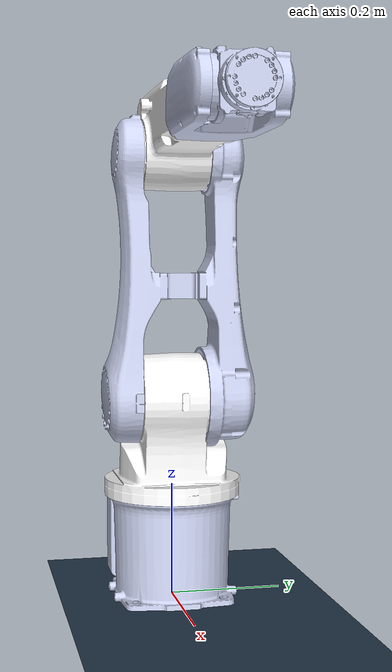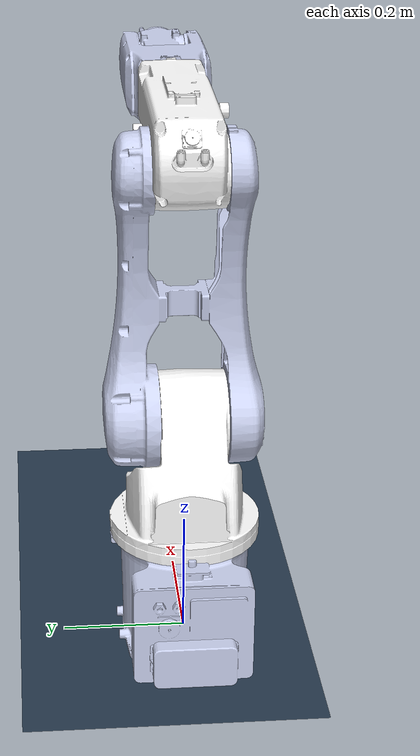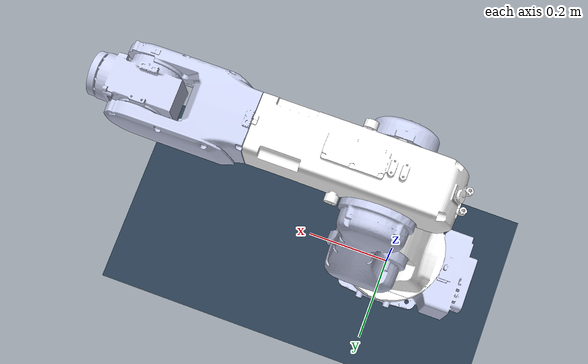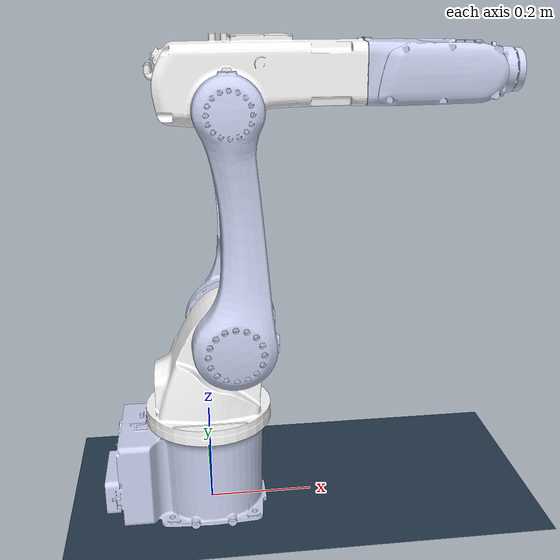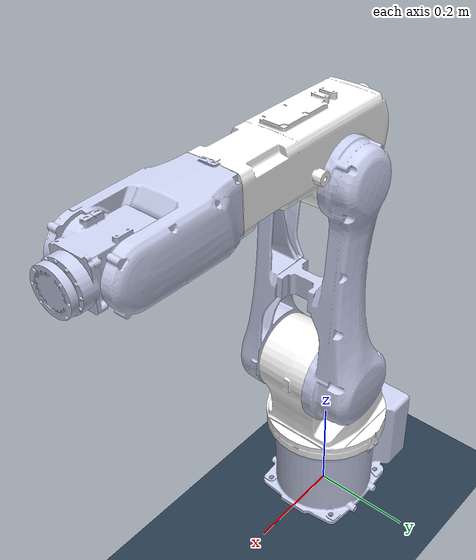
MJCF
<mujoco model="R7-900_description">
  <compiler angle="radian" meshdir="../urdf/QJ7-900_stl/meshes/"/>

  <default>
    <!-- 参考 Panda 配置优化 -->
    <!-- armature="0.1": 增加电枢惯量，这是"丝滑"且不抖动的关键，模拟电机转子惯量 -->
    <!-- damping="1": 默认给一个小阻尼，重负载关节(J1-J3)在下方单独增加阻尼 -->
    <joint type="hinge" limited ="true" range="-3 3" frictionloss="0.5" damping="1" armature="0.1"/>
    <position ctrllimited="true" ctrlrange="-3 3" forcelimited="true"/>
  </default>

  <actuator>
    <position name="J1" joint="joint_1" kp="1000" kv="20" forcerange="-100 100" />
    <position name="J2" joint="joint_2" kp="1000" kv="20" forcerange="-100 100" />
    <position name="J3" joint="joint_3" kp="750" kv="4" forcerange="-80 80" />
    <position name="J4" joint="joint_4" kp="750" kv="4" forcerange="-40 40" />
    <position name="J5" joint="joint_5" kp="300" kv="2" forcerange="-40 40" />
    <position name="J6" joint="joint_6" kp="300" kv="2" forcerange="-50 50" />
  </actuator>

  <contact>
    <!-- 关键修复：忽略 base_link 和 link_1 之间的碰撞，解决穿模卡死问题，同时保留与其他物体的碰撞 -->
    <exclude body1="base_link" body2="link_1"/>
  </contact>

  <asset>
    <mesh name="base_link" content_type="model/stl" file="base_link.STL"/>
    <mesh name="link_1" content_type="model/stl" file="link_1.STL"/>
    <mesh name="link_2" content_type="model/stl" file="link_2.STL"/>
    <mesh name="link_3" content_type="model/stl" file="link_3.STL"/>
    <mesh name="link_4" content_type="model/stl" file="link_4.STL"/>
    <mesh name="link_5" content_type="model/stl" file="link_5.STL"/>
    <mesh name="link_6" content_type="model/stl" file="link_6.STL"/>
    <texture type="skybox" builtin="gradient" rgb1="0.3 0.5 0.7" rgb2="0 0 0" width="512" height="512" />
    <texture name="texplane" type="2d" builtin="checker" rgb1=".2 .3 .4" rgb2=".1 0.15 0.2" width="512" height="512" mark="cross" markrgb=".8 .8 .8" />
    <material name="matplane" reflectance="0.3" texture="texplane" texrepeat="1 1" texuniform="true" />
  </asset>

  <worldbody>
    <light directional="true" diffuse=".4 .4 .4" specular="0.1 0.1 0.1" pos="0 0 5.0" dir="0 0 -1" castshadow="false" />
    <light directional="true" diffuse=".6 .6 .6" specular="0.2 0.2 0.2" pos="0 0 4" dir="0 0 -1" />
    <geom name="floor" pos="0 0 0" size="15 15 1" type="plane" material="matplane" margin="0.001" condim="3" friction="1 0.005 0.0001" />
    <!-- 将 base_link 几何体包裹在 body 中，以便使用 exclude 标签 -->
    <body name="base_link" pos="0 0 0">
      <geom type="mesh" group="1" density="0" rgba="0.79216 0.81961 0.93333 1" mesh="base_link"/>
      <geom type="mesh" rgba="0.79216 0.81961 0.93333 1" mesh="base_link"/>
    </body>
    <body name="link_1" pos="0 0 0.2015">
      <inertial pos="0.015148 -0.0035955 0.090973" quat="0.673884 0.212926 0.161012 0.688926" mass="6.0875" diaginertia="0.0469665 0.0452337 0.0274648"/>
      <joint name="joint_1" pos="0 0 0" axis="0 0 -1" range="-3 3"  damping="10"/>
      <geom type="mesh" group="1" density="0" rgba="1 1 1 1" mesh="link_1"/>
      <geom type="mesh" rgba="1 1 1 1" mesh="link_1"/>
      <body name="link_2" pos="0.05 0.041 0.162" quat="0.707105 0.707108 0 0">
        <inertial pos="0.0061742 0.15315 0.038744" quat="0.705852 0.708339 -0.00497945 0.00195325" mass="4.1869" diaginertia="0.154545 0.125278 0.0392258"/>
        <joint name="joint_2" pos="0 0 0" axis="0 0 -1" range="-3 3"  damping="50"/>
        <geom type="mesh" contype="0" conaffinity="0" group="1" density="0" rgba="0.79216 0.81961 0.93333 1" mesh="link_2"/>
        <geom type="mesh" rgba="0.79216 0.81961 0.93333 1" mesh="link_2"/>
        <body name="link_3" pos="0 0.42 -0.008" quat="0.707105 0 0 0.707108">
          <inertial pos="0.038554 -0.043544 0.052978" quat="0.531241 0.598911 -0.391409 0.453748" mass="5.2733" diaginertia="0.0576103 0.0552688 0.0147739"/>
          <joint name="joint_3" pos="0 0 0" axis="0 0 -1" range="-3 3"  damping="20"/>
          <geom type="mesh" contype="0" conaffinity="0" group="1" density="0" rgba="1 1 1 1" mesh="link_3"/>
          <geom type="mesh" rgba="1 1 1 1" mesh="link_3"/>
          <body name="link_4" pos="0.055 -0.244 0.049" quat="0.707105 0.707108 0 0">
            <inertial pos="-0.00029498 -0.0013119 0.090128" quat="0.999142 0.0412961 0.00297542 -0.000390573" mass="2.2276" diaginertia="0.0128562 0.0102521 0.00627025"/>
            <joint name="joint_4" pos="0 0 0" axis="0 0 1" range="-3 3" />
            <geom type="mesh" contype="0" conaffinity="0" group="1" density="0" rgba="0.79216 0.81961 0.93333 1" mesh="link_4"/>
            <geom type="mesh" rgba="0.79216 0.81961 0.93333 1" mesh="link_4"/>
            <body name="link_5" pos="0 -0.033 0.186" quat="0.713791 -0.700359 0 0">
              <inertial pos="0.0030646 -0.012914 0.03783" quat="0.681628 0.70222 -0.169278 0.116685" mass="0.79838" diaginertia="0.0016033 0.00154067 0.000791128"/>
              <joint name="joint_5" pos="0 0 0" axis="0 -0.018946 -0.999821" range="-3 3" />
              <geom type="mesh" contype="0" conaffinity="0" group="1" density="0" rgba="0.79216 0.81961 0.93333 1" mesh="link_5"/>
              <geom type="mesh" rgba="0.79216 0.81961 0.93333 1" mesh="link_5"/>
              <body name="link_6" pos="3.7006e-05 -0.08286 0.034576" quat="0.713791 0.700359 0 0">
                <inertial pos="6.1991e-05 -4.8508e-10 0.0054511" quat="0.499969 0.499969 -0.500031 0.500031" mass="0.050698" diaginertia="3.6864e-05 1.9067e-05 1.9041e-05"/>
                <joint name="joint_6" pos="0 0 0" axis="0 0 1" range="-3 3" />
                <geom type="mesh" contype="0" conaffinity="0" group="1" density="0" rgba="0.79216 0.81961 0.93333 1" mesh="link_6"/>
                <geom type="mesh" rgba="0.79216 0.81961 0.93333 1" mesh="link_6"/>
              </body>
            </body>
          </body>
        </body>
      </body>
    </body>
  </worldbody>
</mujoco>
